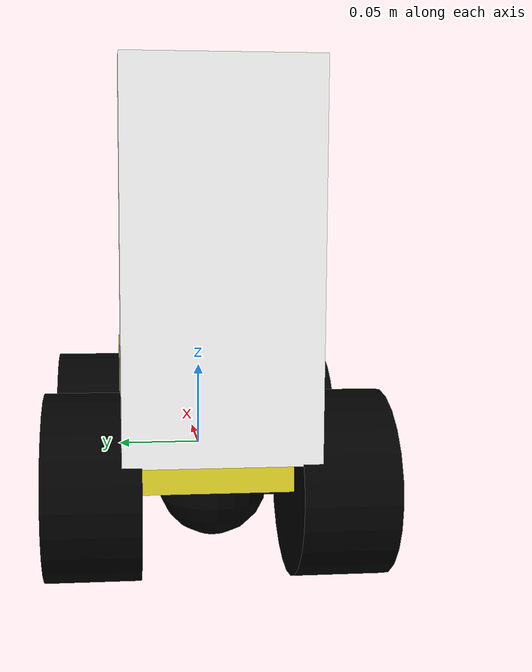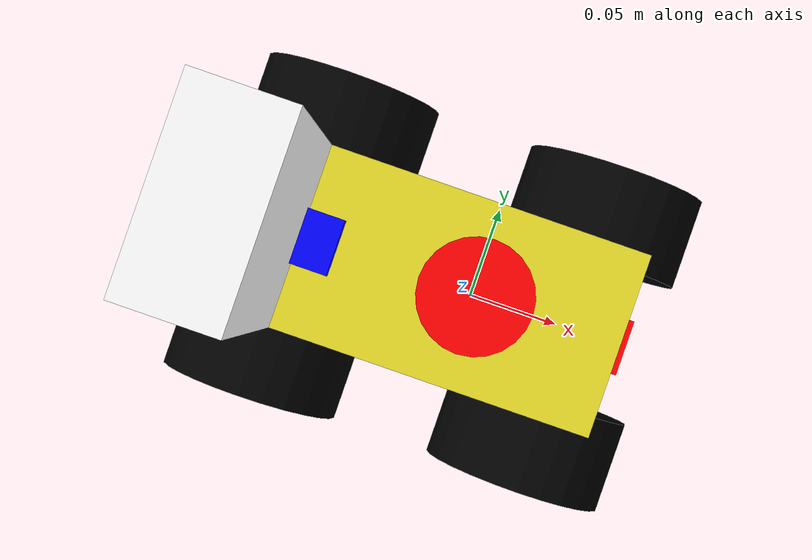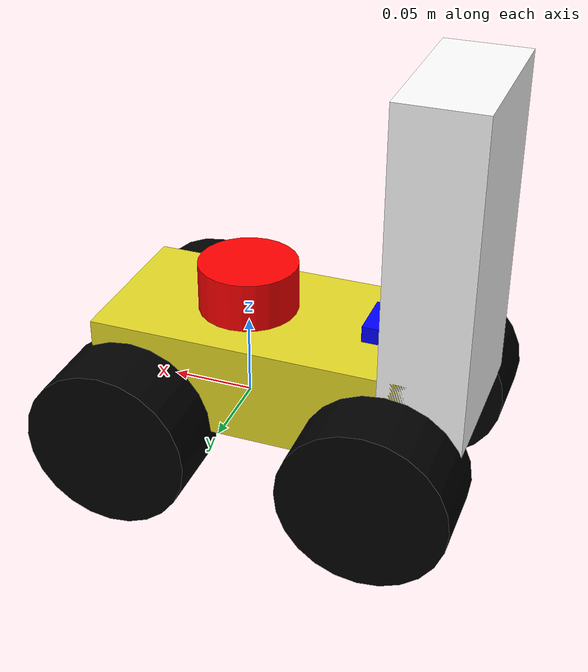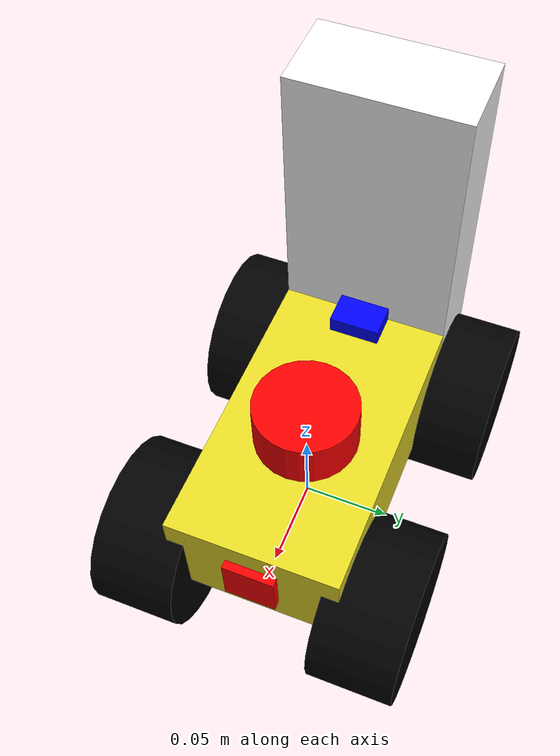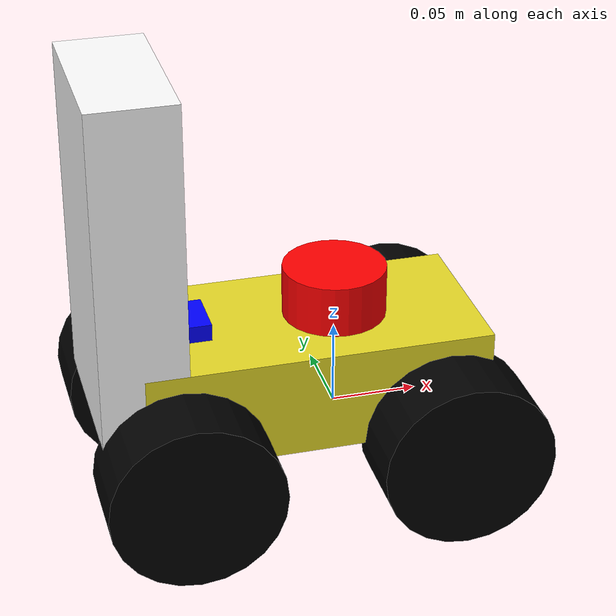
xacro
<?xml version="1.0"?>
<robot xmlns:xacro="http://ros.org/wiki/xacro" name="ferrari_op" >

    <xacro:arg name="frame_suffix" default="_op"/>
    <xacro:arg name="ros_namespace" default=""/>
    <xacro:property name="suffix" value="$(arg frame_suffix)"/>
    <xacro:property name="robot_ns" value="$(arg ros_namespace)"/>

    <xacro:include filename="macros.xacro"/>

    <!-- Commonly reused link/joint names -->
    <xacro:property name="base_link_name" value="${'base_link' + suffix}"/>
    <xacro:property name="body_link_name" value="${'body' + suffix}"/>
    <xacro:property name="bar_link_name" value="${'bar' + suffix}"/>
    <xacro:property name="fl_steer_link" value="${'front_left_steer_link' + suffix}"/>
    <xacro:property name="fr_steer_link" value="${'front_right_steer_link' + suffix}"/>
    <xacro:property name="rl_wheel_link" value="${'rear_left_wheel' + suffix}"/>
    <xacro:property name="rr_wheel_link" value="${'rear_right_wheel' + suffix}"/>
    <xacro:property name="fl_wheel_link" value="${'front_left_wheel' + suffix}"/>
    <xacro:property name="fr_wheel_link" value="${'front_right_wheel' + suffix}"/>
    <xacro:property name="caster_link" value="${'caster_wheel' + suffix}"/>
    <xacro:property name="laser_frame_link" value="${'laser_frame' + suffix}"/>
    <xacro:property name="camera_link_name" value="${'camera_link' + suffix}"/>
    <xacro:property name="camera_optical_link_name" value="${'camera_link_optical' + suffix}"/>
    <xacro:property name="imu_link_name" value="${'imu_link' + suffix}"/>
    <xacro:property name="body_joint_name" value="${'body_joint' + suffix}"/>
    <xacro:property name="bar_joint_name" value="${'bar_joint' + suffix}"/>
    <!-- Actuated joint names는 두 차량이 동일(ros2_control 연동 용) -->
    <xacro:property name="fl_steer_joint" value="front_left_steer_joint"/>
    <xacro:property name="fr_steer_joint" value="front_right_steer_joint"/>
    <xacro:property name="fl_wheel_joint" value="front_left_wheel_joint"/>
    <xacro:property name="fr_wheel_joint" value="front_right_wheel_joint"/>
    <xacro:property name="rl_wheel_joint" value="rear_left_wheel_joint"/>
    <xacro:property name="rr_wheel_joint" value="rear_right_wheel_joint"/>
    <xacro:property name="caster_joint_name" value="${'caster_wheel_joint' + suffix}"/>
    <xacro:property name="laser_joint_name" value="${'laser_joint' + suffix}"/>
    <xacro:property name="camera_joint_name" value="${'camera_joint' + suffix}"/>
    <xacro:property name="camera_optical_joint_name" value="${'camera_optical_joint' + suffix}"/>
    <xacro:property name="imu_joint_name" value="${'imu_joint' + suffix}"/>

    <!-- COLOR-->
    <material name = "white">
        <color rgba = "1 1 1 1"/>
    </material>

    <material name = "blue">
        <color rgba = "0 0 1 1"/>
    </material>

    <material name="black">
        <color rgba="0 0 0 1"/>
    </material>

    <material name="red">
        <color rgba="1 0 0 1"/>
    </material>

    <!--BASE LINK-->
    <link name = "${base_link_name}">
    </link>

    <!--BODY LINK-->
    <joint name = "${body_joint_name}" type = "fixed">
        <parent link = "${base_link_name}"/>
        <child link = "${body_link_name}" />
        <origin xyz = "-0.12 0 0"/>
    </joint>

    <link name = "${body_link_name}">
        <visual>
            <origin xyz = "0.1 0 0.03"/>
            <geometry>
                <box size = "0.2 0.1 0.06"/>
            </geometry>
            <material name = "yellow"/>
        </visual>
        <collision>
            <origin xyz = "0.1 0 0.03"/>
            <geometry>
                <box size = "0.2 0.1 0.06"/>
            </geometry>
        </collision>
        <xacro:inertial_box mass="0.5" x="0.2" y="0.1" z="0.06">
            <origin xyz="0.1 0 0.03" rpy="0 0 0"/>
        </xacro:inertial_box>
    </link>

    <!--BAR LINK-->
    <joint name = "${bar_joint_name}" type = "fixed">
        <parent link = "${body_link_name}"/>
        <child link = "${bar_link_name}" />
        <origin xyz = "0 0 0.06"/>
    </joint>

    <link name = "${bar_link_name}">
        <visual>
            <origin xyz = "0 0 0.06"/>
            <geometry>
                <box size = "0.05 0.1 0.2"/>
            </geometry>
            <material name = "white"/>
        </visual>
        <collision>
            <origin xyz = "0 0 0.06"/>
            <geometry>
                <box size = "0.05 0.1 0.2"/>
            </geometry>
        </collision>
        <xacro:inertial_box mass="0.5" x="0.5" y="0.1" z="0.2">
            <origin xyz="0.0 0 0.06" rpy="0 0 0"/>
        </xacro:inertial_box>
    </link>

    <!-- 앞바퀴용 조향 링크 두 개 추가 -->
    <link name="${fl_steer_link}">
        <visual>
            <geometry>
                <box size="0.01 0.01 0.01"/>
            </geometry>
        </visual>
        <collision>
            <geometry>
                <box size="0.01 0.01 0.01"/>
            </geometry>
        </collision>
        <xacro:inertial_box mass="0.02" x="0.01" y="0.01" z="0.01">
            <origin xyz="0 0 0" rpy="0 0 0"/>
        </xacro:inertial_box>
    </link>

    <link name="${fr_steer_link}">
        <visual>
            <geometry>
                <box size="0.01 0.01 0.01"/>
            </geometry>
        </visual>
        <collision>
            <geometry>
                <box size="0.01 0.01 0.01"/>
            </geometry>
        </collision>
        <xacro:inertial_box mass="0.02" x="0.01" y="0.01" z="0.01">
            <origin xyz="0 0 0" rpy="0 0 0"/>
        </xacro:inertial_box>
    </link>

    <!-- 앞바퀴 조향 조인트: yaw 축, ±20deg = ±0.349066rad -->
    <joint name="${fl_steer_joint}" type="revolute">
        <parent link="${base_link_name}"/>
        <child  link="${fl_steer_link}"/>
        <origin xyz="0.055 0.065 0" rpy="0 0 0"/>   <!-- 원래 앞바퀴 위치와 같게 -->
        <axis xyz="0 0 1"/>
        <limit lower="-0.349066" upper="0.349066" effort="30" velocity="2.0"/>
    </joint>

    <joint name="${fr_steer_joint}" type="revolute">
        <parent link="${base_link_name}"/>
        <child  link="${fr_steer_link}"/>
        <origin xyz="0.055 -0.065 0" rpy="0 0 0"/>
        <axis xyz="0 0 1"/>
        <limit lower="-0.349066" upper="0.349066" effort="30" velocity="2.0"/>
    </joint>

    <!-- FRONT LEFT WHEEL -->
    <xacro:wheel_link name="${fl_wheel_link}" parent_link="${fl_steer_link}"
                  xyz="0 0 0" rpy="-${pi/2} 0 0" direction="1" joint_name="${fl_wheel_joint}"/>

    <gazebo reference = "${fl_wheel_link}">
        <material>Gazebo/Black</material>
    </gazebo>

    <!-- FRONT RIGHT WHEEL -->
    <xacro:wheel_link name="${fr_wheel_link}" parent_link="${fr_steer_link}"
                  xyz="0 0 0" rpy="${pi/2} 0 0" direction="-1" joint_name="${fr_wheel_joint}"/>

    <gazebo reference = "${fr_wheel_link}">
        <material>Gazebo/Black</material>
    </gazebo>

    <!-- REAR LEFT WHEEL -->
    <xacro:wheel_link name="${rl_wheel_link}" parent_link="${base_link_name}"
                  xyz="-0.1 0.065 0" rpy="-${pi/2} 0 0" direction="1" joint_name="${rl_wheel_joint}"/>

    <gazebo reference = "${rl_wheel_link}">
        <material>Gazebo/Black</material>
    </gazebo>

    <!-- REAR RIGHT WHEEL -->
    <xacro:wheel_link name="${rr_wheel_link}" parent_link="${base_link_name}"
                  xyz="-0.1 -0.065 0" rpy="${pi/2} 0 0" direction="-1" joint_name="${rr_wheel_joint}"/>

    <gazebo reference = "${rr_wheel_link}">
        <material>Gazebo/Black</material>
    </gazebo>

    <!-- CASTER WHEEL LINK -->
    <joint name="${caster_joint_name}" type="fixed">
        <parent link="${body_link_name}"/>
        <child link="${caster_link}"/>
        <origin xyz="0.03 0 0"/>
    </joint>

    <link name="${caster_link}">
        <visual>
            <geometry>
                <sphere radius = "0.03"/>
            </geometry>
            <material name = "black"/>
        </visual>
        <collision>
            <geometry>
                <sphere radius = "0.03"/>
            </geometry>
        </collision>
        <xacro:inertial_sphere mass="0.1" radius="0.03">
            <origin xyz="0 0 0" rpy="0 0 0"/>
        </xacro:inertial_sphere>
    </link>

    <gazebo reference = "${caster_link}">
        <material>Gazebo/Blue</material>

        <mu1 value="0.001"/>
        <mu2 value="0.001"/>
    </gazebo>

    <!--LiDAR-->
    <joint name = "${laser_joint_name}" type = "fixed">
        <parent link = "${base_link_name}"/>
        <child link = "${laser_frame_link}"/>
        <origin xyz = "0 0 0.075" rpy="0 0 0"/>
    </joint>

    <link name="${laser_frame_link}">
        <visual>
            <geometry>
                <cylinder radius="0.03" length="0.03"/>
            </geometry>
            <material name = "red"/>
        </visual>
        <collision>
            <geometry>
                <cylinder radius="0.03" length="0.03"/>
            </geometry>
        </collision>
    </link>

    <!-- CAMERA -->
    <joint name = "${camera_joint_name}" type = "fixed">
        <parent link = "${body_link_name}"/>
        <child link = "${camera_link_name}"/>
        <origin xyz = "0.20 0 0.03" rpy="0 0 0"/>
    </joint>

    <link name = "${camera_link_name}">
        <visual>
            <geometry>
                <box size = "0.01 0.03 0.03"/>
            </geometry>
            <material name = "red"/>
        </visual>
        <collision>
            <geometry>
                <box size = "0.01 0.03 0.03"/>
            </geometry>
        </collision>
    </link>

    <joint name = "${camera_optical_joint_name}" type = "fixed">
        <parent link = "${camera_link_name}"/>
        <child link = "${camera_optical_link_name}"/>
        <origin xyz = "0 0 0" rpy = "${-pi/2} 0 ${pi/2}"/>
    </joint>

    <link name = "${camera_optical_link_name}">
    </link>

    <!-- IMU -->
    <joint name = "${imu_joint_name}" type = "fixed">
        <parent link = "${body_link_name}"/>
        <child link = "${imu_link_name}"/>
        <origin xyz = "0.03 0 0.065" rpy = "0 0 0"/>
    </joint>

    <link name = "${imu_link_name}">
        <visual>
            <geometry>
                <box size = "0.03 0.03 0.01"/>
            </geometry>
            <material name = "blue"/>
        </visual>
        <collision>
            <geometry>
                <box size = "0.03 0.01 0.03"/>
            </geometry>
        </collision>
    </link>

    <!--GAZEBO AND SENSORS-->
    <xacro:include filename="ackermann.xacro"/>
    <xacro:include filename="lidar.xacro"/>
    <xacro:include filename="camera.xacro"/>
    <xacro:include filename="imu.xacro"/>

    <xacro:add_gazebo_and_ros2_control joint_suffix="" controllers_file="$(find ferrari)/config/controllers_op.yaml" ros_namespace="${robot_ns}" hardware_name="ferrari_op_hw"/>
    <xacro:add_lidar frame_suffix="${suffix}" ros_namespace="${robot_ns}"/>
    <xacro:add_camera frame_suffix="${suffix}" ros_namespace="${robot_ns}"/>
    <xacro:add_imu frame_suffix="${suffix}" ros_namespace="${robot_ns}"/>

</robot>

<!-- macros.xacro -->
<robot xmlns:xacro="http://www.ros.org/wiki/xacro" >
    <xacro:macro name = "inertial_sphere" params="mass radius *origin">
        <inertial>
            <xacro:insert_block name="origin"/>
            <mass value="${mass}" />
            <inertia ixx="${(2/5)*mass*(radius*radius)}" ixy="0.0" ixz="0.0"
                    iyy="${(2/5)*mass*(radius*radius)}" iyz = "0.0"
                    izz="${(2/5)*mass*(radius*radius)}" />
        </inertial>
    </xacro:macro>

    <xacro:macro name = "inertial_box" params = "mass x y z *origin">
        <inertial>
            <xacro:insert_block name="origin"/>
            <mass value="${mass}"/>
            <inertia ixx="${(1/12)*mass*(y*y+z*z)}" ixy="0.0" ixz="0.0"
                    iyy="${(1/12)*mass*(x*x+z*z)}" iyz = "0.0"
                    izz="${(1/12)*mass*(x*x+y*y)}" />
        </inertial>
    </xacro:macro>

    <xacro:macro name = "inertial_cylinder" params = "mass length radius *origin">
        <inertial>
            <xacro:insert_block name="origin"/>
            <mass value="${mass}"/>
            <inertia ixx="${(1/12)*mass*(3*radius*radius+length*length)}" ixy="0.0" ixz="0.0"
                    iyy="${(1/12)*mass*(3*radius*radius+length*length)}" iyz = "0.0"
                    izz="${(1/2)*mass*(radius*radius)}" />
        </inertial>
    </xacro:macro>

    <!-- wheel macro -->
    <xacro:macro name="wheel_link" params="name parent_link xyz rpy direction joint_name:=''">
        <xacro:property name="wheel_joint_name" value="${joint_name if joint_name else name + '_joint'}"/>

        <joint name="${wheel_joint_name}" type="continuous">
            <parent link="${parent_link}"/>
            <child link="${name}"/>
            <origin xyz="${xyz}" rpy="0 0 0"/>
            <axis xyz="0 1 0"/>
        </joint>

        <link name="${name}">
            <visual>
                <origin xyz="0 0 0" rpy="${rpy}"/>
                <geometry>
                    <cylinder radius="0.05" length="0.05"/>
                </geometry>
                <material name="black"/>
            </visual>
            <collision>
                <origin xyz="0 0 0" rpy="${rpy}"/>
                <geometry>
                    <cylinder radius="0.05" length="0.05"/>
                </geometry>
            </collision>

            <xacro:inertial_cylinder mass="0.1" length="0.05" radius="0.05">
                <origin xyz="0 0 0" rpy="0 0 0"/>
            </xacro:inertial_cylinder>
        </link>
    </xacro:macro>
</robot>

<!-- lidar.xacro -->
<robot xmlns:xacro="http://www.ros.org/wiki/xacro">

    <xacro:macro name="add_lidar" params="frame_suffix:='' ros_namespace:=''">
        <xacro:property name="lidar_frame" value="${'laser_frame' + frame_suffix}"/>
        <xacro:property name="lidar_sensor_name" value="${'laser' + frame_suffix}"/>
        <xacro:property name="lidar_topic" value="${'/' + ros_namespace + '/scan' if ros_namespace != '' else 'scan'}"/>

        <gazebo reference="${lidar_frame}">
            <material>Gazebo/Red</material>
            <sensor name="${lidar_sensor_name}" type="ray">
                <pose>0 0 0 0 0 0</pose>
                <visualize>true</visualize>
                <update_rate>10</update_rate>
                <ray>
                    <scan>
                        <horizontal>
                            <samples>1440</samples>
                            <min_angle>-3.14</min_angle>
                            <max_angle>3.14</max_angle>
                        </horizontal>
                    </scan>
                    <range>
                        <min>0.2</min>
                        <max>12</max>
                    </range>
                </ray>
                <plugin name="${'laser_controller' + frame_suffix}" filename="libgazebo_ros_ray_sensor.so">
                    <ros>
                        <argument>~/out:=${lidar_topic}</argument>
                    </ros>
                    <output_type>sensor_msgs/LaserScan</output_type>
                    <frame_name>${lidar_frame}</frame_name>
                </plugin>
            </sensor>
        </gazebo>
    </xacro:macro>

</robot>

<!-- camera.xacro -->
<robot xmlns:xacro="http://www.ros.org/wiki/xacro">

    <xacro:macro name="add_camera" params="frame_suffix:='' ros_namespace:='' camera_topic_prefix:='camera' camera_sensor_name:='camera'">
        <xacro:property name="camera_link" value="${'camera_link' + frame_suffix}"/>
        <xacro:property name="camera_optical_link" value="${'camera_link_optical' + frame_suffix}"/>
        <xacro:property name="camera_sensor_name_value" value="${camera_sensor_name}"/>
        <xacro:property name="camera_topic_prefix_full" value="${'/' + ros_namespace + '/' + camera_topic_prefix if ros_namespace != '' else camera_topic_prefix}"/>

        <gazebo reference="${camera_link}">
            <material>Gazebo/Red</material>
            <sensor name="${camera_sensor_name_value}" type="camera">
                <pose>0 0 0 0 0 0</pose>
                <visualize>true</visualize>
                <update_rate>10</update_rate>
                <camera>
                    <horizontal_fov>1.089</horizontal_fov>
                    <image>
                        <format>B8G8R8</format>
                        <width>640</width>
                        <height>480</height>
                    </image>
                    <clip>
                        <near>0.05</near>
                        <far>8.0</far>
                    </clip>
                </camera>
                <plugin name="${'camera_controller' + frame_suffix}" filename="libgazebo_ros_camera.so">
                    <ros>
                        <argument>~/image_raw:=${camera_topic_prefix_full}/image_raw</argument>
                        <argument>~/camera_info:=${camera_topic_prefix_full}/camera_info</argument>
                    </ros>
                    <frame_name>${camera_optical_link}</frame_name>
                    <min_depth>0.1</min_depth>
                    <max_depth>100.0</max_depth>
                </plugin>
            </sensor>
        </gazebo>
    </xacro:macro>

</robot>

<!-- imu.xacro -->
<robot xmlns:xacro="http://www.ros.org/wiki/xacro">

  <xacro:macro name="add_imu" params="frame_suffix:='' ros_namespace:=''">
    <xacro:property name="imu_link_name" value="${'imu_link' + frame_suffix}"/>
    <xacro:property name="imu_sensor_name" value="${'imu' + frame_suffix}"/>
    <xacro:property name="imu_topic" value="${'/' + ros_namespace + '/imu/data' if ros_namespace != '' else 'imu/data'}"/>

    <!-- imu_link 또는 imu_frame 이름의 링크가 URDF 안에 존재해야 합니다 -->
    <gazebo reference="${imu_link_name}">
      <material>Gazebo/Blue</material>

      <!-- Gazebo IMU 센서 정의 -->
      <sensor name="${imu_sensor_name}" type="imu">
        <pose>0 0 0 0 0 0</pose>
        <visualize>false</visualize>
        <always_on>true</always_on>
        <update_rate>100</update_rate>

        <!-- 노이즈 모델: 가우시안 예시값. 필요에 따라 조정 -->
        <imu>
          <angular_velocity>
            <x>
              <noise type="gaussian">
                <mean>0.0</mean>
                <stddev>0.002</stddev>
                <bias_mean>0.0</bias_mean>
                <bias_stddev>0.0002</bias_stddev>
              </noise>
            </x>
            <y>
              <noise type="gaussian">
                <mean>0.0</mean>
                <stddev>0.002</stddev>
                <bias_mean>0.0</bias_mean>
                <bias_stddev>0.0002</bias_stddev>
              </noise>
            </y>
            <z>
              <noise type="gaussian">
                <mean>0.0</mean>
                <stddev>0.002</stddev>
                <bias_mean>0.0</bias_mean>
                <bias_stddev>0.0002</bias_stddev>
              </noise>
            </z>
          </angular_velocity>

          <linear_acceleration>
            <x>
              <noise type="gaussian">
                <mean>0.0</mean>
                <stddev>0.1</stddev>
                <bias_mean>0.0</bias_mean>
                <bias_stddev>0.01</bias_stddev>
              </noise>
            </x>
            <y>
              <noise type="gaussian">
                <mean>0.0</mean>
                <stddev>0.1</stddev>
                <bias_mean>0.0</bias_mean>
                <bias_stddev>0.01</bias_stddev>
              </noise>
            </y>
            <z>
              <noise type="gaussian">
                <mean>0.0</mean>
                <stddev>0.1</stddev>
                <bias_mean>0.0</bias_mean>
                <bias_stddev>0.01</bias_stddev>
              </noise>
            </z>
          </linear_acceleration>
        </imu>

        <!-- ROS2 Foxy + Gazebo Classic용 IMU 플러그인 -->
        <plugin name="${'imu_plugin' + frame_suffix}" filename="libgazebo_ros_imu_sensor.so">
          <ros>
            <!-- ~/out 기본 토픽을 원하는 이름으로 리매핑 -->
            <argument>~/out:=${imu_topic}</argument>
          </ros>
          <frame_name>${imu_link_name}</frame_name>
        </plugin>
      </sensor>
    </gazebo>
  </xacro:macro>

</robot>
